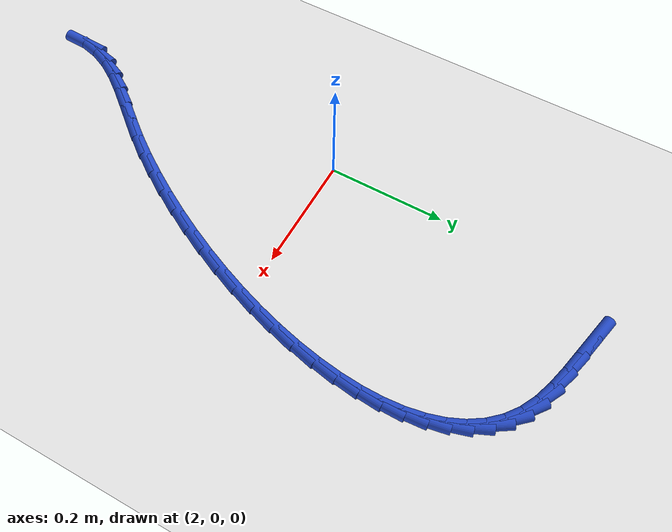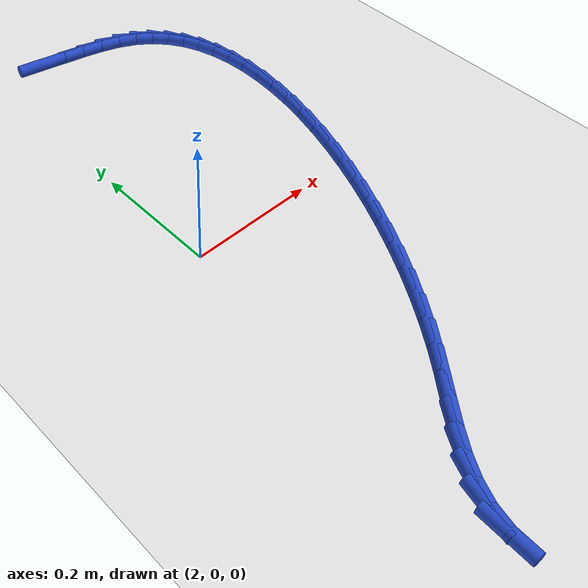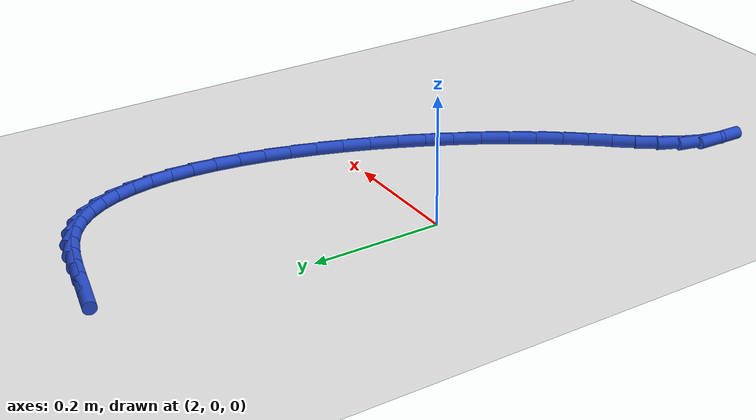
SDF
<sdf version="1.6">
 <world name="default">
  <model name="ground_plane">
   <static>1</static>
   <link name="link">
    <collision name="collision">
     <geometry><plane><normal>0 0 1</normal><size>100 100</size></plane></geometry>
     <surface><friction><ode><mu>100</mu><mu2>50</mu2></ode></friction></surface>
    </collision>
    <visual name="visual">
     <cast_shadows>0</cast_shadows>
     <geometry><plane><normal>0 0 1</normal><size>100 100</size></plane></geometry>
     <material>
      <script><uri>file://media/materials/scripts/gazebo.material</uri><name>Gazebo/WhiteGlow</name></script>
     </material>
    </visual>
   </link>
  </model>
  <model name="line">
   <link name="link_89">
    <pose>2.0827610993751464 0.49436324391610675 0.01 0 1.57 -0.20872957087108948</pose>
    <collision name="collision">
     <geometry><cylinder><radius>0.01</radius><length>0.08</length></cylinder></geometry>
    </collision>
    <visual name="visual">
     <material>
      <script><name>Gazebo/Blue</name><uri>file://media/materials/scripts/gazebo.material</uri></script>
     </material>
     <geometry><cylinder><radius>0.01</radius><length>0.08</length></cylinder></geometry>
    </visual>
   </link>
   <link name="link_90">
    <pose>2.1184446458337205 0.4868049456959236 0.01 0 1.57 -0.2108578740167117</pose>
    <collision name="collision">
     <geometry><cylinder><radius>0.01</radius><length>0.08</length></cylinder></geometry>
    </collision>
    <visual name="visual">
     <material>
      <script><name>Gazebo/Blue</name><uri>file://media/materials/scripts/gazebo.material</uri></script>
     </material>
     <geometry><cylinder><radius>0.01</radius><length>0.08</length></cylinder></geometry>
    </visual>
   </link>
   <link name="link_91">
    <pose>2.153344333464042 0.4793350355549919 0.01 0 1.57 -0.24942064899093436</pose>
    <collision name="collision">
     <geometry><cylinder><radius>0.01</radius><length>0.08</length></cylinder></geometry>
    </collision>
    <visual name="visual">
     <material>
      <script><name>Gazebo/Blue</name><uri>file://media/materials/scripts/gazebo.material</uri></script>
     </material>
     <geometry><cylinder><radius>0.01</radius><length>0.08</length></cylinder></geometry>
    </visual>
   </link>
   <link name="link_92">
    <pose>2.186556581435828 0.4708750494092193 0.01 0 1.57 -0.33116848493613216</pose>
    <collision name="collision">
     <geometry><cylinder><radius>0.01</radius><length>0.08</length></cylinder></geometry>
    </collision>
    <visual name="visual">
     <material>
      <script><name>Gazebo/Blue</name><uri>file://media/materials/scripts/gazebo.material</uri></script>
     </material>
     <geometry><cylinder><radius>0.01</radius><length>0.08</length></cylinder></geometry>
    </visual>
   </link>
   <link name="link_93">
    <pose>2.2171778089187906 0.4603465231745131 0.01 0 1.57 -0.46635270470213464</pose>
    <collision name="collision">
     <geometry><cylinder><radius>0.01</radius><length>0.08</length></cylinder></geometry>
    </collision>
    <visual name="visual">
     <material>
      <script><name>Gazebo/Blue</name><uri>file://media/materials/scripts/gazebo.material</uri></script>
     </material>
     <geometry><cylinder><radius>0.01</radius><length>0.08</length></cylinder></geometry>
    </visual>
   </link>
   <link name="link_94">
    <pose>2.244315935691733 0.44668557124266 0.01 0 1.57 -0.6406188574766067</pose>
    <collision name="collision">
     <geometry><cylinder><radius>0.01</radius><length>0.08</length></cylinder></geometry>
    </collision>
    <visual name="visual">
     <material>
      <script><name>Gazebo/Blue</name><uri>file://media/materials/scripts/gazebo.material</uri></script>
     </material>
     <geometry><cylinder><radius>0.01</radius><length>0.08</length></cylinder></geometry>
    </visual>
   </link>
   <link name="link_95">
    <pose>2.267519660418898 0.42938705096431534 0.01 0 1.57 -0.8186222880513925</pose>
    <collision name="collision">
     <geometry><cylinder><radius>0.01</radius><length>0.08</length></cylinder></geometry>
    </collision>
    <visual name="visual">
     <material>
      <script><name>Gazebo/Blue</name><uri>file://media/materials/scripts/gazebo.material</uri></script>
     </material>
     <geometry><cylinder><radius>0.01</radius><length>0.08</length></cylinder></geometry>
    </visual>
   </link>
   <link name="link_96">
    <pose>2.2869066467481503 0.4086670547332448 0.01 0 1.57 -0.9884060970715556</pose>
    <collision name="collision">
     <geometry><cylinder><radius>0.01</radius><length>0.08</length></cylinder></geometry>
    </collision>
    <visual name="visual">
     <material>
      <script><name>Gazebo/Blue</name><uri>file://media/materials/scripts/gazebo.material</uri></script>
     </material>
     <geometry><cylinder><radius>0.01</radius><length>0.08</length></cylinder></geometry>
    </visual>
   </link>
   <link name="link_97">
    <pose>2.3026322210118106 0.38478941715692455 0.01 0 1.57 -1.1426019666059637</pose>
    <collision name="collision">
     <geometry><cylinder><radius>0.01</radius><length>0.08</length></cylinder></geometry>
    </collision>
    <visual name="visual">
     <material>
      <script><name>Gazebo/Blue</name><uri>file://media/materials/scripts/gazebo.material</uri></script>
     </material>
     <geometry><cylinder><radius>0.01</radius><length>0.08</length></cylinder></geometry>
    </visual>
   </link>
   <link name="link_98">
    <pose>2.3148517095421908 0.35801797284283043 0.01 0 1.57 -1.277832947994499</pose>
    <collision name="collision">
     <geometry><cylinder><radius>0.01</radius><length>0.08</length></cylinder></geometry>
    </collision>
    <visual name="visual">
     <material>
      <script><name>Gazebo/Blue</name><uri>file://media/materials/scripts/gazebo.material</uri></script>
     </material>
     <geometry><cylinder><radius>0.01</radius><length>0.08</length></cylinder></geometry>
    </visual>
   </link>
   <link name="link_99">
    <pose>2.3237204386716104 0.3286165563984396 0.01 0 1.57 -1.394071651430606</pose>
    <collision name="collision">
     <geometry><cylinder><radius>0.01</radius><length>0.08</length></cylinder></geometry>
    </collision>
    <visual name="visual">
     <material>
      <script><name>Gazebo/Blue</name><uri>file://media/materials/scripts/gazebo.material</uri></script>
     </material>
     <geometry><cylinder><radius>0.01</radius><length>0.08</length></cylinder></geometry>
    </visual>
   </link>
   <link name="link_100">
    <pose>2.3293937347323856 0.2968490024312282 0.01 0 1.57 -1.4932080649780168</pose>
    <collision name="collision">
     <geometry><cylinder><radius>0.01</radius><length>0.08</length></cylinder></geometry>
    </collision>
    <visual name="visual">
     <material>
      <script><name>Gazebo/Blue</name><uri>file://media/materials/scripts/gazebo.material</uri></script>
     </material>
     <geometry><cylinder><radius>0.01</radius><length>0.08</length></cylinder></geometry>
    </visual>
   </link>
   <link name="link_101">
    <pose>2.3320269240568328 0.26297914554867197 0.01 0 1.57 1.5637507172580294</pose>
    <collision name="collision">
     <geometry><cylinder><radius>0.01</radius><length>0.08</length></cylinder></geometry>
    </collision>
    <visual name="visual">
     <material>
      <script><name>Gazebo/Blue</name><uri>file://media/materials/scripts/gazebo.material</uri></script>
     </material>
     <geometry><cylinder><radius>0.01</radius><length>0.08</length></cylinder></geometry>
    </visual>
   </link>
   <link name="link_102">
    <pose>2.3317753329772666 0.22727082035824808 0.01 0 1.57 1.4910087584285268</pose>
    <collision name="collision">
     <geometry><cylinder><radius>0.01</radius><length>0.08</length></cylinder></geometry>
    </collision>
    <visual name="visual">
     <material>
      <script><name>Gazebo/Blue</name><uri>file://media/materials/scripts/gazebo.material</uri></script>
     </material>
     <geometry><cylinder><radius>0.01</radius><length>0.08</length></cylinder></geometry>
    </visual>
   </link>
   <link name="link_103">
    <pose>2.3287942878260064 0.18998786146743263 0.01 0 1.57 1.4278385541445826</pose>
    <collision name="collision">
     <geometry><cylinder><radius>0.01</radius><length>0.08</length></cylinder></geometry>
    </collision>
    <visual name="visual">
     <material>
      <script><name>Gazebo/Blue</name><uri>file://media/materials/scripts/gazebo.material</uri></script>
     </material>
     <geometry><cylinder><radius>0.01</radius><length>0.08</length></cylinder></geometry>
    </visual>
   </link>
   <link name="link_104">
    <pose>2.323239114935366 0.15139410348370183 0.01 0 1.57 1.3722893516417625</pose>
    <collision name="collision">
     <geometry><cylinder><radius>0.01</radius><length>0.08</length></cylinder></geometry>
    </collision>
    <visual name="visual">
     <material>
      <script><name>Gazebo/Blue</name><uri>file://media/materials/scripts/gazebo.material</uri></script>
     </material>
     <geometry><cylinder><radius>0.01</radius><length>0.08</length></cylinder></geometry>
    </visual>
   </link>
   <link name="link_105">
    <pose>2.315265140637665 0.11175338101453211 0.01 0 1.57 1.3227586585079127</pose>
    <collision name="collision">
     <geometry><cylinder><radius>0.01</radius><length>0.08</length></cylinder></geometry>
    </collision>
    <visual name="visual">
     <material>
      <script><name>Gazebo/Blue</name><uri>file://media/materials/scripts/gazebo.material</uri></script>
     </material>
     <geometry><cylinder><radius>0.01</radius><length>0.08</length></cylinder></geometry>
    </visual>
   </link>
   <link name="link_106">
    <pose>2.3050276912652174 0.07132952866739888 0.01 0 1.57 1.2779362122470375</pose>
    <collision name="collision">
     <geometry><cylinder><radius>0.01</radius><length>0.08</length></cylinder></geometry>
    </collision>
    <visual name="visual">
     <material>
      <script><name>Gazebo/Blue</name><uri>file://media/materials/scripts/gazebo.material</uri></script>
     </material>
     <geometry><cylinder><radius>0.01</radius><length>0.08</length></cylinder></geometry>
    </visual>
   </link>
   <link name="link_107">
    <pose>2.29268209315034 0.03038638104978026 0.01 0 1.57 1.2367423751138578</pose>
    <collision name="collision">
     <geometry><cylinder><radius>0.01</radius><length>0.08</length></cylinder></geometry>
    </collision>
    <visual name="visual">
     <material>
      <script><name>Gazebo/Blue</name><uri>file://media/materials/scripts/gazebo.material</uri></script>
     </material>
     <geometry><cylinder><radius>0.01</radius><length>0.08</length></cylinder></geometry>
    </visual>
   </link>
   <link name="link_108">
    <pose>2.27838367262535 -0.01081222723084823 0.01 0 1.57 1.1982718985527017</pose>
    <collision name="collision">
     <geometry><cylinder><radius>0.01</radius><length>0.08</length></cylinder></geometry>
    </collision>
    <visual name="visual">
     <material>
      <script><name>Gazebo/Blue</name><uri>file://media/materials/scripts/gazebo.material</uri></script>
     </material>
     <geometry><cylinder><radius>0.01</radius><length>0.08</length></cylinder></geometry>
    </visual>
   </link>
   <link name="link_109">
    <pose>2.262287756022564 -0.05200246156701027 0.01 0 1.57 1.1617456749066437</pose>
    <collision name="collision">
     <geometry><cylinder><radius>0.01</radius><length>0.08</length></cylinder></geometry>
    </collision>
    <visual name="visual">
     <material>
      <script><name>Gazebo/Blue</name><uri>file://media/materials/scripts/gazebo.material</uri></script>
     </material>
     <geometry><cylinder><radius>0.01</radius><length>0.08</length></cylinder></geometry>
    </visual>
   </link>
   <link name="link_110">
    <pose>2.2445496696742984 -0.09292048735122954 0.01 0 1.57 1.1264696901405122</pose>
    <collision name="collision">
     <geometry><cylinder><radius>0.01</radius><length>0.08</length></cylinder></geometry>
    </collision>
    <visual name="visual">
     <material>
      <script><name>Gazebo/Blue</name><uri>file://media/materials/scripts/gazebo.material</uri></script>
     </material>
     <geometry><cylinder><radius>0.01</radius><length>0.08</length></cylinder></geometry>
    </visual>
   </link>
   <link name="link_111">
    <pose>2.225324739912869 -0.13330246997602968 0.01 0 1.57 1.0917991537720473</pose>
    <collision name="collision">
     <geometry><cylinder><radius>0.01</radius><length>0.08</length></cylinder></geometry>
    </collision>
    <visual name="visual">
     <material>
      <script><name>Gazebo/Blue</name><uri>file://media/materials/scripts/gazebo.material</uri></script>
     </material>
     <geometry><cylinder><radius>0.01</radius><length>0.08</length></cylinder></geometry>
    </visual>
   </link>
   <link name="link_112">
    <pose>2.2047682930705923 -0.1728845748339352 0.01 0 1.57 1.0571053711042913</pose>
    <collision name="collision">
     <geometry><cylinder><radius>0.01</radius><length>0.08</length></cylinder></geometry>
    </collision>
    <visual name="visual">
     <material>
      <script><name>Gazebo/Blue</name><uri>file://media/materials/scripts/gazebo.material</uri></script>
     </material>
     <geometry><cylinder><radius>0.01</radius><length>0.08</length></cylinder></geometry>
    </visual>
   </link>
   <link name="link_113">
    <pose>2.1830356554797867 -0.211402967317468 0.01 0 1.57 1.0217427125383582</pose>
    <collision name="collision">
     <geometry><cylinder><radius>0.01</radius><length>0.08</length></cylinder></geometry>
    </collision>
    <visual name="visual">
     <material>
      <script><name>Gazebo/Blue</name><uri>file://media/materials/scripts/gazebo.material</uri></script>
     </material>
     <geometry><cylinder><radius>0.01</radius><length>0.08</length></cylinder></geometry>
    </visual>
   </link>
   <link name="link_114">
    <pose>2.1602821534727665 -0.2485938128191526 0.01 0 1.57 0.9850127236353062</pose>
    <collision name="collision">
     <geometry><cylinder><radius>0.01</radius><length>0.08</length></cylinder></geometry>
    </collision>
    <visual name="visual">
     <material>
      <script><name>Gazebo/Blue</name><uri>file://media/materials/scripts/gazebo.material</uri></script>
     </material>
     <geometry><cylinder><radius>0.01</radius><length>0.08</length></cylinder></geometry>
    </visual>
   </link>
   <link name="link_115">
    <pose>2.1366631133818488 -0.2841932767315126 0.01 0 1.57 0.9461218374191389</pose>
    <collision name="collision">
     <geometry><cylinder><radius>0.01</radius><length>0.08</length></cylinder></geometry>
    </collision>
    <visual name="visual">
     <material>
      <script><name>Gazebo/Blue</name><uri>file://media/materials/scripts/gazebo.material</uri></script>
     </material>
     <geometry><cylinder><radius>0.01</radius><length>0.08</length></cylinder></geometry>
    </visual>
   </link>
   <link name="link_116">
    <pose>2.112333861539352 -0.3179375244470719 0.01 0 1.57 0.9052762561392744</pose>
    <collision name="collision">
     <geometry><cylinder><radius>0.01</radius><length>0.08</length></cylinder></geometry>
    </collision>
    <visual name="visual">
     <material>
      <script><name>Gazebo/Blue</name><uri>file://media/materials/scripts/gazebo.material</uri></script>
     </material>
     <geometry><cylinder><radius>0.01</radius><length>0.08</length></cylinder></geometry>
    </visual>
   </link>
   <link name="link_117">
    <pose>2.087482012926452 -0.3495964109121663 0.01 0 1.57 0.8799756129789351</pose>
    <collision name="collision">
     <geometry><cylinder><radius>0.01</radius><length>0.08</length></cylinder></geometry>
    </collision>
    <visual name="visual">
     <material>
      <script><name>Gazebo/Blue</name><uri>file://media/materials/scripts/gazebo.material</uri></script>
     </material>
     <geometry><cylinder><radius>0.01</radius><length>0.08</length></cylinder></geometry>
    </visual>
   </link>
   <link name="link_118">
    <pose>2.062793503171662 -0.3794597323173659 0.01 0 1.57 0.8869054651624824</pose>
    <collision name="collision">
     <geometry><cylinder><radius>0.01</radius><length>0.08</length></cylinder></geometry>
    </collision>
    <visual name="visual">
     <material>
      <script><name>Gazebo/Blue</name><uri>file://media/materials/scripts/gazebo.material</uri></script>
     </material>
     <geometry><cylinder><radius>0.01</radius><length>0.08</length></cylinder></geometry>
    </visual>
   </link>
   <link name="link_119">
    <pose>2.0393457948378733 -0.4082257989344909 0.01 0 1.57 0.9310196389352378</pose>
    <collision name="collision">
     <geometry><cylinder><radius>0.01</radius><length>0.08</length></cylinder></geometry>
    </collision>
    <visual name="visual">
     <material>
      <script><name>Gazebo/Blue</name><uri>file://media/materials/scripts/gazebo.material</uri></script>
     </material>
     <geometry><cylinder><radius>0.01</radius><length>0.08</length></cylinder></geometry>
    </visual>
   </link>
   <link name="link_120">
    <pose>2.0182268901462126 -0.43660391797687775 0.01 0 1.57 1.0181088111532972</pose>
    <collision name="collision">
     <geometry><cylinder><radius>0.01</radius><length>0.08</length></cylinder></geometry>
    </collision>
    <visual name="visual">
     <material>
      <script><name>Gazebo/Blue</name><uri>file://media/materials/scripts/gazebo.material</uri></script>
     </material>
     <geometry><cylinder><radius>0.01</radius><length>0.08</length></cylinder></geometry>
    </visual>
   </link>
   <link name="link_121">
    <pose>2.000524791317805 -0.4653033966578646 0.01 0 1.57 1.1530245044313265</pose>
    <collision name="collision">
     <geometry><cylinder><radius>0.01</radius><length>0.08</length></cylinder></geometry>
    </collision>
    <visual name="visual">
     <material>
      <script><name>Gazebo/Blue</name><uri>file://media/materials/scripts/gazebo.material</uri></script>
     </material>
     <geometry><cylinder><radius>0.01</radius><length>0.08</length></cylinder></geometry>
    </visual>
   </link>
   <link name="link_122">
    <pose>1.987327500573776 -0.49503354219078877 0.01 0 1.57 1.3337000203145293</pose>
    <collision name="collision">
     <geometry><cylinder><radius>0.01</radius><length>0.08</length></cylinder></geometry>
    </collision>
    <visual name="visual">
     <material>
      <script><name>Gazebo/Blue</name><uri>file://media/materials/scripts/gazebo.material</uri></script>
     </material>
     <geometry><cylinder><radius>0.01</radius><length>0.08</length></cylinder></geometry>
    </visual>
   </link>
   <link name="link_123">
    <pose>1.9797230201352516 -0.526503661788988 0.01 0 1.57 1.536568834570541</pose>
    <collision name="collision">
     <geometry><cylinder><radius>0.01</radius><length>0.08</length></cylinder></geometry>
    </collision>
    <visual name="visual">
     <material>
      <script><name>Gazebo/Blue</name><uri>file://media/materials/scripts/gazebo.material</uri></script>
     </material>
     <geometry><cylinder><radius>0.01</radius><length>0.08</length></cylinder></geometry>
    </visual>
   </link>
  </model>
 </world>
</sdf>
